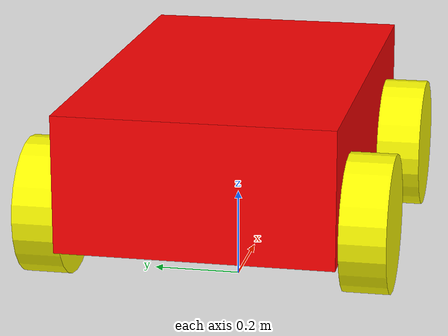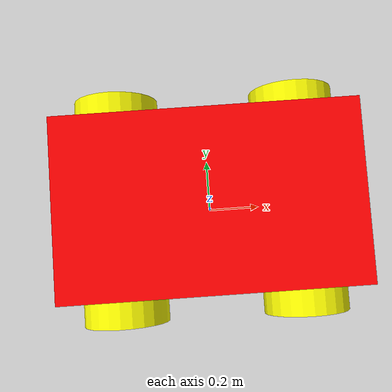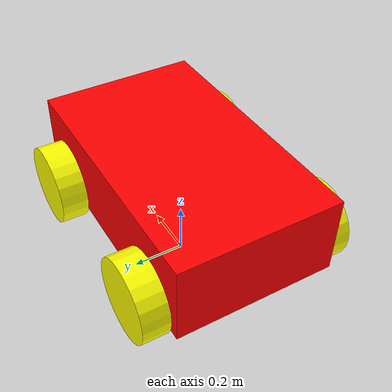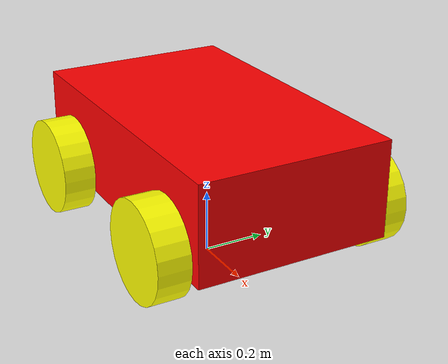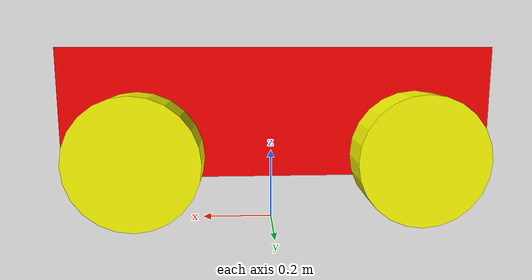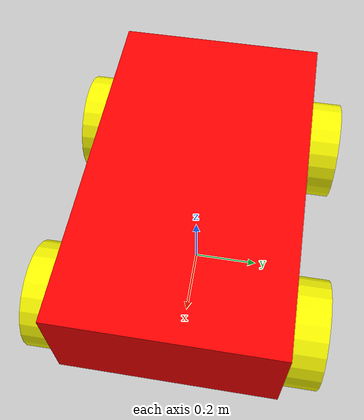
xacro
<?xml version="1.0"?>
<robot xmlns:xacro="http://www.ros.org/wiki/xacro" name="robot">

<material name = "yellow">
        <color rgba = "1 1 0 1" />
 </material>
 <material name = "red">
        <color rgba = "1 0 0 1" />
 </material>

  <!-- Define parameters for size and position -->
  <xacro:property name="body_link_x_dim" value="1.0" />
  <xacro:property name="body_link_y_dim" value="0.6" />
  <xacro:property name="body_link_z_dim" value="0.3" />
  <xacro:property name="wheel_link_radius" value="0.15" />
  <xacro:property name="wheel_link_length" value="0.1" />
  <xacro:property name="wheel_link_z_location" value="-0.1" />

  <!-- Material Density-->
  <xacro:property name="body_density" value="2710.0"/>
  <xacro:property name="wheel_density" value="2710.0"/>
  <!--Pi-->
  <xacro:property name="pi_const" value="3.14159265"/>

  <!--Robot body and wheel mass-->
  <xacro:property name="body_mass" value="${body_density*body_link_x_dim*body_link_y_dim*body_link_z_dim}"/>
  <xacro:property name="wheel_mass" value="${wheel_density*pi_const*wheel_link_radius*wheel_link_radius*wheel_link_length}"/>

  <!--Moments of intertia of the wheels-->
  <xacro:property name="Iz_wheel" value="${0.5*wheel_mass*wheel_link_radius*wheel_link_radius}"/>
  <xacro:property name="I_wheel" value="${(1.0/12.0) * wheel_mass * (3.0 * wheel_link_radius*wheel_link_radius+wheel_link_length*wheel_link_length)}"/>

  <xacro:macro name="inertia_wheel">
        <inertial>
        <origin rpy="0 0 0" xyz="0 0 0"/>
        <mass value="${wheel_mass}"/>
        <inertia ixx="${I_wheel}" ixy="0.0" ixz="0.0" iyy="${I_wheel}" iyz="0" izz="${Iz_wheel}"/>
        </inertial>
  </xacro:macro>

  <!--xacro:include filename="$(find ee148_project)/urdf/gazebo_control.xacro"-/ -->

  <link name = "base_link">
  </link>

  <!--BODY LINK-->
<joint name="body_joint" type="fixed">
        <parent link="base_link"/>
        <child link="body_link"/>
        <origin xyz = "0 0 0.35"/>
</joint>

<link name="body_link">

  <visual>
          <geometry>
                <box size="${body_link_x_dim} ${body_link_y_dim} ${body_link_z_dim}" />
          </geometry>
          <origin rpy="0 0 0" xyz="0 0 0"/>
          <material name = "red"/>
  </visual>

  <collision>
        <geometry>
            <box size ="${body_link_x_dim} ${body_link_y_dim} ${body_link_z_dim}"/>
        </geometry>
            <origin rpy="0 0 0" xyz="0 0 0"/>
  </collision>
        <inertial>
            <origin rpy="0 0 0" xyz="0 0 0"/>
            <mass value="${body_mass}"/>
            <inertia
            ixx="${(1/12) * body_mass*(body_link_y_dim*body_link_y_dim+body_link_z_dim*body_link_z_dim)}" ixy="0"
            ixz="0" iyy="${(1/12)*body_mass*(body_link_x_dim*body_link_x_dim+body_link_z_dim*body_link_z_dim)}"
            iyz="0"
            izz="${(1/12)*body_mass*(body_link_y_dim*body_link_y_dim+body_link_x_dim*body_link_x_dim)}" />
        </inertial>
</link>
    <gazebo reference="body_link">
        <material>Gazebo/Red</material>
        <mu1>0.2</mu1>
        <mu2>0.2</mu2>
    </gazebo>

<!-- Back right wheel and joint-->
<joint name ="wheel1_joint" type="continuous" >
        <parent link="body_link"/>
        <child link="wheel1_link"/>
        <origin xyz="${-body_link_x_dim/2+1.2*wheel_link_radius} ${-body_link_y_dim/2-wheel_link_length/2} ${wheel_link_z_location}" rpy="0 0 0" />
        <axis xyz="0 1 0" />
        <limit effort="1000" velocity="1000"/>
        <dynamics damping="1.0" friction="1.0"/>
</joint>

<link name="wheel1_link">
        <visual>
            <origin rpy="1.570795 0 0" xyz="0 0 0" />
            <geometry>
                <cylinder length="${wheel_link_length}" radius="${wheel_link_radius}" />
            </geometry>
            <material name = "yellow"/>
        </visual>

        <collision>
                <origin rpy="1.570795 0 0" xyz="0 0 0"/>
                <geometry>
                        <cylinder length="${wheel_link_length}" radius="${wheel_link_radius}"/>
                </geometry>
        </collision>

        <xacro:inertia_wheel />
</link>
    <gazebo reference="wheel1_link">
        <material>Gazebo/Yellow</material>
        <mu1>0.2</mu1>
        <mu2>0.2</mu2>
    </gazebo>

<!-- Back left wheen and joint-->

<joint name ="wheel2_joint" type="continuous" >
        <parent link="body_link"/>
        <child link="wheel2_link"/>
        <origin xyz="${-body_link_x_dim/2+1.2*wheel_link_radius} ${body_link_y_dim/2+wheel_link_length/2} ${wheel_link_z_location}" rpy="0 0 0" />
        <axis xyz="0 1 0" />
        <limit effort="1000" velocity="1000"/>
        <dynamics damping="1.0" friction="1.0"/>
</joint>

<link name="wheel2_link">
        <visual>
            <origin rpy="1.570795 0 0" xyz="0 0 0" />
            <geometry>
                <cylinder length="${wheel_link_length}" radius="${wheel_link_radius}" />
            </geometry>
            <material name = "yellow"/>
        </visual>

        <collision>
                <origin rpy="1.570795 0 0" xyz="0 0 0"/>
                <geometry>
                        <cylinder length="${wheel_link_length}" radius="${wheel_link_radius}"/>
                </geometry>
        </collision>

        <xacro:inertia_wheel />
</link>
    <gazebo reference="wheel2_link">
        <material>Gazebo/Yellow</material>
        <mu1>0.2</mu1>
        <mu2>0.2</mu2>
    </gazebo>

<!--Front right wheel and joint-->
<joint name ="wheel3_joint" type="continuous" >
        <parent link="body_link"/>
        <child link="wheel3_link"/>
        <origin xyz="${body_link_x_dim/2-1.2*wheel_link_radius} ${-body_link_y_dim/2-wheel_link_length/2} ${wheel_link_z_location}" rpy="0 0 0" />
        <axis xyz="0 1 0" />
        <limit effort="1000" velocity="1000"/>
        <dynamics damping="1.0" friction="1.0"/>
</joint>

<link name="wheel3_link">
        <visual>
            <origin rpy="1.570795 0 0" xyz="0 0 0" />
            <geometry>
                <cylinder length="${wheel_link_length}" radius="${wheel_link_radius}" />
            </geometry>
            <material name = "yellow"/>
        </visual>

        <collision>
                <origin rpy="1.570795 0 0" xyz="0 0 0"/>
                <geometry>
                        <cylinder length="${wheel_link_length}" radius="${wheel_link_radius}"/>
                </geometry>
        </collision>

        <xacro:inertia_wheel />
</link>
    <gazebo reference="wheel3_link">
        <material>Gazebo/Yellow</material>
        <mu1>0.2</mu1>
        <mu2>0.2</mu2>
    </gazebo>

<!--Front left wheel and joint-->
<joint name ="wheel4_joint" type="continuous" >
        <parent link="body_link"/>
        <child link="wheel4_link"/>
        <origin xyz="${body_link_x_dim/2-1.2*wheel_link_radius} ${body_link_y_dim/2+wheel_link_length/2} ${wheel_link_z_location}" rpy="0 0 0" />
        <axis xyz="0 1 0" />
        <limit effort="1000" velocity="1000"/>
        <dynamics damping="1.0" friction="1.0"/>
</joint>

<link name="wheel4_link">
        <visual>
            <origin rpy="1.570795 0 0" xyz="0 0 0" />
            <geometry>
                <cylinder length="${wheel_link_length}" radius="${wheel_link_radius}" />
            </geometry>
            <material name = "yellow"/>
        </visual>

        <collision>
                <origin rpy="1.570795 0 0" xyz="0 0 0"/>
                <geometry>
                        <cylinder length="${wheel_link_length}" radius="${wheel_link_radius}"/>
                </geometry>
        </collision>

        <xacro:inertia_wheel />
</link>
    <gazebo reference="wheel4_link">
        <material>Gazebo/Yellow</material>
        <mu1>0.2</mu1>
        <mu2>0.2</mu2>
    </gazebo>

      <xacro:include filename="$(find ee148_project)/urdf/gazebo_control.xacro" />

</robot>
